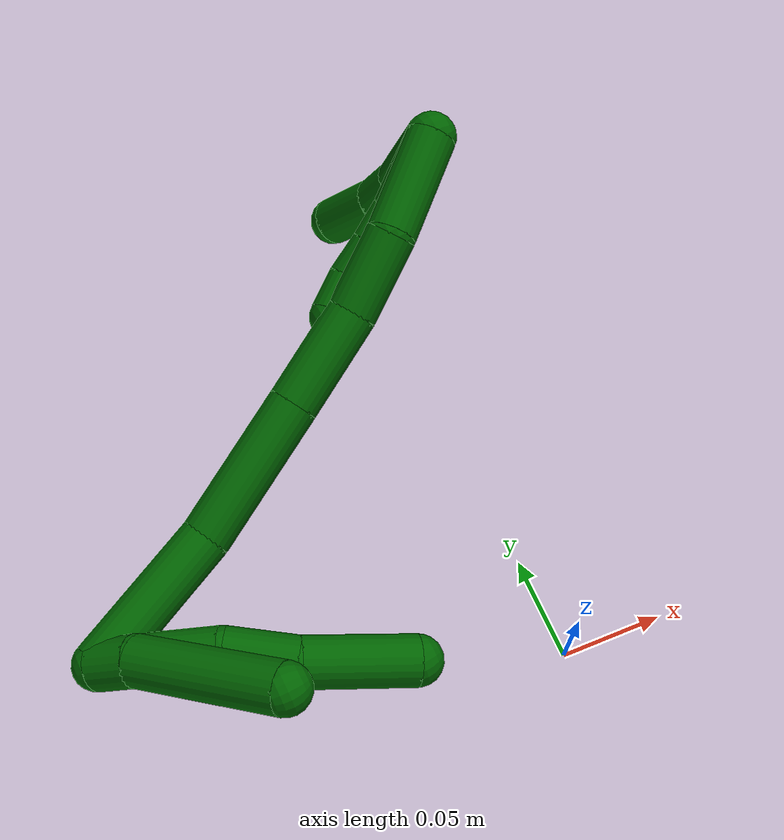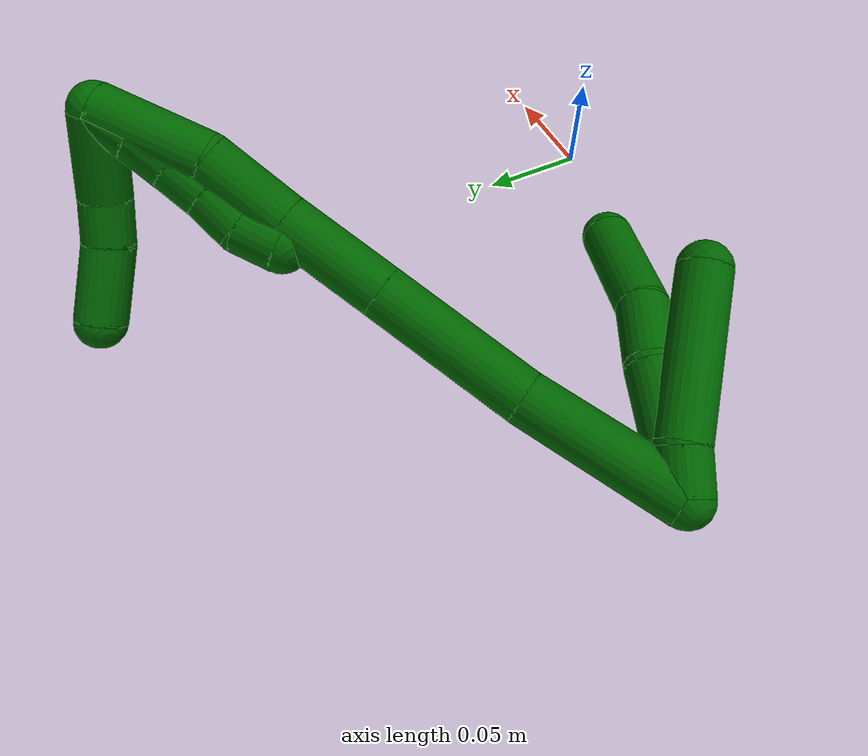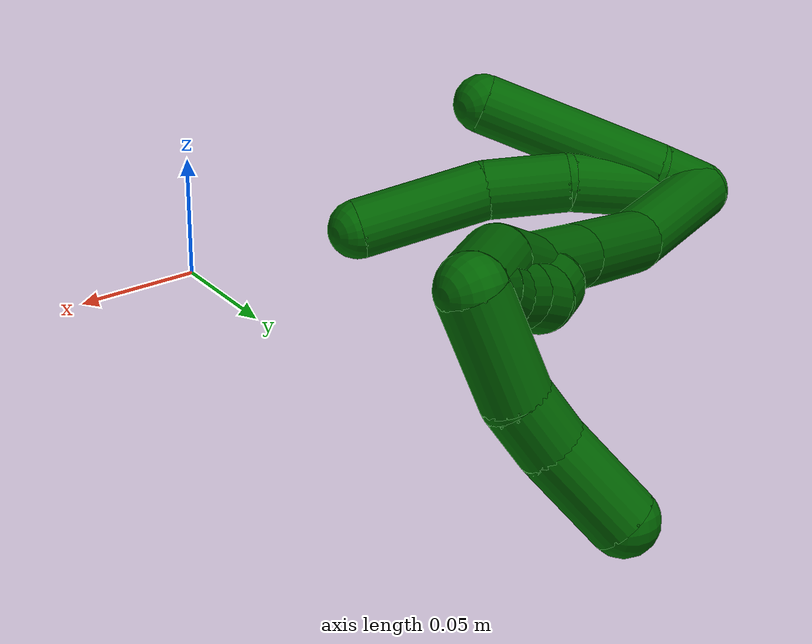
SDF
<sdf version="1.7">
 <world name="default">
  <model name="6">
   <static>0</static>
   <link name="6">
    <collision name="collision-cylinder-e_1_2_8">
     <pose>-0.011887 -0.005236 0.026683 0.193768 -0.41211 -0.040623</pose>
     <geometry><cylinder><radius>0.0125</radius><length>0.059353</length></cylinder></geometry>
     <surface>
      <friction><ode><mu>1.16</mu><mu2>1.16</mu2><slip1>0</slip1><slip2>0</slip2></ode></friction>
      <contact><ode><kp>1e+06</kp><kd>1</kd><max_vel>0</max_vel><min_depth>0.001</min_depth></ode></contact>
     </surface>
    </collision>
    <visual name="visual-cylinder-e_1_2_8">
     <pose>-0.011887 -0.005236 0.026683 0.193768 -0.41211 -0.040623</pose>
     <geometry><cylinder><radius>0.0125</radius><length>0.059353</length></cylinder></geometry>
     <material><ambient>0 0.392157 0.003922 1</ambient></material>
    </visual>
    <collision name="collision-cylinder-e_2_8_9">
     <pose>-0.029392 -0.018268 0.068027 0.488724 -0.326263 -0.082035</pose>
     <geometry><cylinder><radius>0.0125</radius><length>0.035058</length></cylinder></geometry>
     <surface>
      <friction><ode><mu>1.16</mu><mu2>1.16</mu2><slip1>0</slip1><slip2>0</slip2></ode></friction>
      <contact><ode><kp>1e+06</kp><kd>1</kd><max_vel>0</max_vel><min_depth>0.001</min_depth></ode></contact>
     </surface>
    </collision>
    <visual name="visual-cylinder-e_2_8_9">
     <pose>-0.029392 -0.018268 0.068027 0.488724 -0.326263 -0.082035</pose>
     <geometry><cylinder><radius>0.0125</radius><length>0.035058</length></cylinder></geometry>
     <material><ambient>0 0.392157 0.003922 1</ambient></material>
    </visual>
    <collision name="collision-cylinder-e_3_9_6">
     <pose>-0.038044 -0.037349 0.107906 0.420772 -0.109391 -0.023382</pose>
     <geometry><cylinder><radius>0.0125</radius><length>0.055588</length></cylinder></geometry>
     <surface>
      <friction><ode><mu>1.16</mu><mu2>1.16</mu2><slip1>0</slip1><slip2>0</slip2></ode></friction>
      <contact><ode><kp>1e+06</kp><kd>1</kd><max_vel>0</max_vel><min_depth>0.001</min_depth></ode></contact>
     </surface>
    </collision>
    <visual name="visual-cylinder-e_3_9_6">
     <pose>-0.038044 -0.037349 0.107906 0.420772 -0.109391 -0.023382</pose>
     <geometry><cylinder><radius>0.0125</radius><length>0.055588</length></cylinder></geometry>
     <material><ambient>0 0.392157 0.003922 1</ambient></material>
    </visual>
    <collision name="collision-cylinder-e_1_2_10">
     <pose>-0.006791 -0.00016 0.008265 0.019326 -0.687745 -0.006921</pose>
     <geometry><cylinder><radius>0.0125</radius><length>0.021396</length></cylinder></geometry>
     <surface>
      <friction><ode><mu>1.16</mu><mu2>1.16</mu2><slip1>0</slip1><slip2>0</slip2></ode></friction>
      <contact><ode><kp>1e+06</kp><kd>1</kd><max_vel>0</max_vel><min_depth>0.001</min_depth></ode></contact>
     </surface>
    </collision>
    <visual name="visual-cylinder-e_1_2_10">
     <pose>-0.006791 -0.00016 0.008265 0.019326 -0.687745 -0.006921</pose>
     <geometry><cylinder><radius>0.0125</radius><length>0.021396</length></cylinder></geometry>
     <material><ambient>0 0.392157 0.003922 1</ambient></material>
    </visual>
    <collision name="collision-cylinder-e_2_10_5">
     <pose>-0.041045 -0.008995 0.043272 0.313694 -0.773683 -0.128669</pose>
     <geometry><cylinder><radius>0.0125</radius><length>0.078604</length></cylinder></geometry>
     <surface>
      <friction><ode><mu>1.16</mu><mu2>1.16</mu2><slip1>0</slip1><slip2>0</slip2></ode></friction>
      <contact><ode><kp>1e+06</kp><kd>1</kd><max_vel>0</max_vel><min_depth>0.001</min_depth></ode></contact>
     </surface>
    </collision>
    <visual name="visual-cylinder-e_2_10_5">
     <pose>-0.041045 -0.008995 0.043272 0.313694 -0.773683 -0.128669</pose>
     <geometry><cylinder><radius>0.0125</radius><length>0.078604</length></cylinder></geometry>
     <material><ambient>0 0.392157 0.003922 1</ambient></material>
    </visual>
    <collision name="collision-cylinder-e_1_2_11">
     <pose>0.008098 0.014545 0.03451 -0.398892 0.212944 -0.0432</pose>
     <geometry><cylinder><radius>0.0125</radius><length>0.076631</length></cylinder></geometry>
     <surface>
      <friction><ode><mu>1.16</mu><mu2>1.16</mu2><slip1>0</slip1><slip2>0</slip2></ode></friction>
      <contact><ode><kp>1e+06</kp><kd>1</kd><max_vel>0</max_vel><min_depth>0.001</min_depth></ode></contact>
     </surface>
    </collision>
    <visual name="visual-cylinder-e_1_2_11">
     <pose>0.008098 0.014545 0.03451 -0.398892 0.212944 -0.0432</pose>
     <geometry><cylinder><radius>0.0125</radius><length>0.076631</length></cylinder></geometry>
     <material><ambient>0 0.392157 0.003922 1</ambient></material>
    </visual>
    <collision name="collision-cylinder-e_2_11_12">
     <pose>0.018677 0.049844 0.100735 -0.579439 0.065382 -0.019497</pose>
     <geometry><cylinder><radius>0.0125</radius><length>0.075966</length></cylinder></geometry>
     <surface>
      <friction><ode><mu>1.16</mu><mu2>1.16</mu2><slip1>0</slip1><slip2>0</slip2></ode></friction>
      <contact><ode><kp>1e+06</kp><kd>1</kd><max_vel>0</max_vel><min_depth>0.001</min_depth></ode></contact>
     </surface>
    </collision>
    <visual name="visual-cylinder-e_2_11_12">
     <pose>0.018677 0.049844 0.100735 -0.579439 0.065382 -0.019497</pose>
     <geometry><cylinder><radius>0.0125</radius><length>0.075966</length></cylinder></geometry>
     <material><ambient>0 0.392157 0.003922 1</ambient></material>
    </visual>
    <collision name="collision-cylinder-e_3_12_13">
     <pose>0.022808 0.085062 0.154024 -0.590626 0.063434 -0.019303</pose>
     <geometry><cylinder><radius>0.0125</radius><length>0.052054</length></cylinder></geometry>
     <surface>
      <friction><ode><mu>1.16</mu><mu2>1.16</mu2><slip1>0</slip1><slip2>0</slip2></ode></friction>
      <contact><ode><kp>1e+06</kp><kd>1</kd><max_vel>0</max_vel><min_depth>0.001</min_depth></ode></contact>
     </surface>
    </collision>
    <visual name="visual-cylinder-e_3_12_13">
     <pose>0.022808 0.085062 0.154024 -0.590626 0.063434 -0.019303</pose>
     <geometry><cylinder><radius>0.0125</radius><length>0.052054</length></cylinder></geometry>
     <material><ambient>0 0.392157 0.003922 1</ambient></material>
    </visual>
    <collision name="collision-cylinder-e_4_13_14">
     <pose>0.023913 0.113693 0.191245 -0.735755 -0.025825 0.009954</pose>
     <geometry><cylinder><radius>0.0125</radius><length>0.042228</length></cylinder></geometry>
     <surface>
      <friction><ode><mu>1.16</mu><mu2>1.16</mu2><slip1>0</slip1><slip2>0</slip2></ode></friction>
      <contact><ode><kp>1e+06</kp><kd>1</kd><max_vel>0</max_vel><min_depth>0.001</min_depth></ode></contact>
     </surface>
    </collision>
    <visual name="visual-cylinder-e_4_13_14">
     <pose>0.023913 0.113693 0.191245 -0.735755 -0.025825 0.009954</pose>
     <geometry><cylinder><radius>0.0125</radius><length>0.042228</length></cylinder></geometry>
     <material><ambient>0 0.392157 0.003922 1</ambient></material>
    </visual>
    <collision name="collision-cylinder-e_5_14_1">
     <pose>0.029731 0.144838 0.226301 -0.718751 0.241938 -0.091276</pose>
     <geometry><cylinder><radius>0.0125</radius><length>0.053122</length></cylinder></geometry>
     <surface>
      <friction><ode><mu>1.16</mu><mu2>1.16</mu2><slip1>0</slip1><slip2>0</slip2></ode></friction>
      <contact><ode><kp>1e+06</kp><kd>1</kd><max_vel>0</max_vel><min_depth>0.001</min_depth></ode></contact>
     </surface>
    </collision>
    <visual name="visual-cylinder-e_5_14_1">
     <pose>0.029731 0.144838 0.226301 -0.718751 0.241938 -0.091276</pose>
     <geometry><cylinder><radius>0.0125</radius><length>0.053122</length></cylinder></geometry>
     <material><ambient>0 0.392157 0.003922 1</ambient></material>
    </visual>
    <collision name="collision-cylinder-e_1_1_15">
     <pose>0.035418 0.15515 0.238287 2.40966 -0.06776 -0.176421</pose>
     <geometry><cylinder><radius>0.0125</radius><length>0.02</length></cylinder></geometry>
     <surface>
      <friction><ode><mu>1.16</mu><mu2>1.16</mu2><slip1>0</slip1><slip2>0</slip2></ode></friction>
      <contact><ode><kp>1e+06</kp><kd>1</kd><max_vel>0</max_vel><min_depth>0.001</min_depth></ode></contact>
     </surface>
    </collision>
    <visual name="visual-cylinder-e_1_1_15">
     <pose>0.035418 0.15515 0.238287 2.40966 -0.06776 -0.176421</pose>
     <geometry><cylinder><radius>0.0125</radius><length>0.02</length></cylinder></geometry>
     <material><ambient>0 0.392157 0.003922 1</ambient></material>
    </visual>
    <collision name="collision-cylinder-e_2_15_16">
     <pose>0.035301 0.141429 0.223799 2.35709 0.056106 0.135453</pose>
     <geometry><cylinder><radius>0.0125</radius><length>0.02</length></cylinder></geometry>
     <surface>
      <friction><ode><mu>1.16</mu><mu2>1.16</mu2><slip1>0</slip1><slip2>0</slip2></ode></friction>
      <contact><ode><kp>1e+06</kp><kd>1</kd><max_vel>0</max_vel><min_depth>0.001</min_depth></ode></contact>
     </surface>
    </collision>
    <visual name="visual-cylinder-e_2_15_16">
     <pose>0.035301 0.141429 0.223799 2.35709 0.056106 0.135453</pose>
     <geometry><cylinder><radius>0.0125</radius><length>0.02</length></cylinder></geometry>
     <material><ambient>0 0.392157 0.003922 1</ambient></material>
    </visual>
    <collision name="collision-cylinder-e_3_16_17">
     <pose>0.035907 0.128342 0.208757 2.49401 0.00451 0.013439</pose>
     <geometry><cylinder><radius>0.0125</radius><length>0.02</length></cylinder></geometry>
     <surface>
      <friction><ode><mu>1.16</mu><mu2>1.16</mu2><slip1>0</slip1><slip2>0</slip2></ode></friction>
      <contact><ode><kp>1e+06</kp><kd>1</kd><max_vel>0</max_vel><min_depth>0.001</min_depth></ode></contact>
     </surface>
    </collision>
    <visual name="visual-cylinder-e_3_16_17">
     <pose>0.035907 0.128342 0.208757 2.49401 0.00451 0.013439</pose>
     <geometry><cylinder><radius>0.0125</radius><length>0.02</length></cylinder></geometry>
     <material><ambient>0 0.392157 0.003922 1</ambient></material>
    </visual>
    <collision name="collision-cylinder-e_4_17_18">
     <pose>0.036934 0.116569 0.192653 2.52674 0.098327 0.3075</pose>
     <geometry><cylinder><radius>0.0125</radius><length>0.02</length></cylinder></geometry>
     <surface>
      <friction><ode><mu>1.16</mu><mu2>1.16</mu2><slip1>0</slip1><slip2>0</slip2></ode></friction>
      <contact><ode><kp>1e+06</kp><kd>1</kd><max_vel>0</max_vel><min_depth>0.001</min_depth></ode></contact>
     </surface>
    </collision>
    <visual name="visual-cylinder-e_4_17_18">
     <pose>0.036934 0.116569 0.192653 2.52674 0.098327 0.3075</pose>
     <geometry><cylinder><radius>0.0125</radius><length>0.02</length></cylinder></geometry>
     <material><ambient>0 0.392157 0.003922 1</ambient></material>
    </visual>
    <collision name="collision-cylinder-e_5_18_4">
     <pose>0.035495 0.104968 0.176791 2.49301 -0.244471 -0.700741</pose>
     <geometry><cylinder><radius>0.0125</radius><length>0.02</length></cylinder></geometry>
     <surface>
      <friction><ode><mu>1.16</mu><mu2>1.16</mu2><slip1>0</slip1><slip2>0</slip2></ode></friction>
      <contact><ode><kp>1e+06</kp><kd>1</kd><max_vel>0</max_vel><min_depth>0.001</min_depth></ode></contact>
     </surface>
    </collision>
    <visual name="visual-cylinder-e_5_18_4">
     <pose>0.035495 0.104968 0.176791 2.49301 -0.244471 -0.700741</pose>
     <geometry><cylinder><radius>0.0125</radius><length>0.02</length></cylinder></geometry>
     <material><ambient>0 0.392157 0.003922 1</ambient></material>
    </visual>
    <collision name="collision-cylinder-e_1_1_19">
     <pose>0.053499 0.151946 0.239905 2.10224 0.988824 1.5113</pose>
     <geometry><cylinder><radius>0.0125</radius><length>0.041667</length></cylinder></geometry>
     <surface>
      <friction><ode><mu>1.16</mu><mu2>1.16</mu2><slip1>0</slip1><slip2>0</slip2></ode></friction>
      <contact><ode><kp>1e+06</kp><kd>1</kd><max_vel>0</max_vel><min_depth>0.001</min_depth></ode></contact>
     </surface>
    </collision>
    <visual name="visual-cylinder-e_1_1_19">
     <pose>0.053499 0.151946 0.239905 2.10224 0.988824 1.5113</pose>
     <geometry><cylinder><radius>0.0125</radius><length>0.041667</length></cylinder></geometry>
     <material><ambient>0 0.392157 0.003922 1</ambient></material>
    </visual>
    <collision name="collision-cylinder-e_2_19_20">
     <pose>0.079595 0.138251 0.228977 2.50076 0.936578 1.98033</pose>
     <geometry><cylinder><radius>0.0125</radius><length>0.021581</length></cylinder></geometry>
     <surface>
      <friction><ode><mu>1.16</mu><mu2>1.16</mu2><slip1>0</slip1><slip2>0</slip2></ode></friction>
      <contact><ode><kp>1e+06</kp><kd>1</kd><max_vel>0</max_vel><min_depth>0.001</min_depth></ode></contact>
     </surface>
    </collision>
    <visual name="visual-cylinder-e_2_19_20">
     <pose>0.079595 0.138251 0.228977 2.50076 0.936578 1.98033</pose>
     <geometry><cylinder><radius>0.0125</radius><length>0.021581</length></cylinder></geometry>
     <material><ambient>0 0.392157 0.003922 1</ambient></material>
    </visual>
    <collision name="collision-cylinder-e_3_20_3">
     <pose>0.104017 0.131205 0.214916 2.79542 1.02757 2.54074</pose>
     <geometry><cylinder><radius>0.0125</radius><length>0.036752</length></cylinder></geometry>
     <surface>
      <friction><ode><mu>1.16</mu><mu2>1.16</mu2><slip1>0</slip1><slip2>0</slip2></ode></friction>
      <contact><ode><kp>1e+06</kp><kd>1</kd><max_vel>0</max_vel><min_depth>0.001</min_depth></ode></contact>
     </surface>
    </collision>
    <visual name="visual-cylinder-e_3_20_3">
     <pose>0.104017 0.131205 0.214916 2.79542 1.02757 2.54074</pose>
     <geometry><cylinder><radius>0.0125</radius><length>0.036752</length></cylinder></geometry>
     <material><ambient>0 0.392157 0.003922 1</ambient></material>
    </visual>
    <collision name="collision-sphere-3">
     <pose>0.119748 0.127982 0.205981 0 -0 0</pose>
     <geometry><sphere><radius>0.0125</radius></sphere></geometry>
     <surface>
      <friction><ode><mu>1.16</mu><mu2>1.16</mu2><slip1>0</slip1><slip2>0</slip2></ode></friction>
      <contact><ode><kp>1e+06</kp><kd>1</kd><max_vel>0</max_vel><min_depth>0.001</min_depth></ode></contact>
     </surface>
    </collision>
    <visual name="visual-sphere-3">
     <pose>0.119748 0.127982 0.205981 0 -0 0</pose>
     <geometry><sphere><radius>0.0125</radius></sphere></geometry>
     <material><ambient>0 0.392157 0.003922 1</ambient></material>
    </visual>
    <collision name="collision-sphere-20">
     <pose>0.088287 0.134428 0.223851 0 -0 0</pose>
     <geometry><sphere><radius>0.0125</radius></sphere></geometry>
     <surface>
      <friction><ode><mu>1.16</mu><mu2>1.16</mu2><slip1>0</slip1><slip2>0</slip2></ode></friction>
      <contact><ode><kp>1e+06</kp><kd>1</kd><max_vel>0</max_vel><min_depth>0.001</min_depth></ode></contact>
     </surface>
    </collision>
    <visual name="visual-sphere-20">
     <pose>0.088287 0.134428 0.223851 0 -0 0</pose>
     <geometry><sphere><radius>0.0125</radius></sphere></geometry>
     <material><ambient>0 0.392157 0.003922 1</ambient></material>
    </visual>
    <collision name="collision-sphere-19">
     <pose>0.070903 0.142073 0.234102 0 -0 0</pose>
     <geometry><sphere><radius>0.0125</radius></sphere></geometry>
     <surface>
      <friction><ode><mu>1.16</mu><mu2>1.16</mu2><slip1>0</slip1><slip2>0</slip2></ode></friction>
      <contact><ode><kp>1e+06</kp><kd>1</kd><max_vel>0</max_vel><min_depth>0.001</min_depth></ode></contact>
     </surface>
    </collision>
    <visual name="visual-sphere-19">
     <pose>0.070903 0.142073 0.234102 0 -0 0</pose>
     <geometry><sphere><radius>0.0125</radius></sphere></geometry>
     <material><ambient>0 0.392157 0.003922 1</ambient></material>
    </visual>
    <collision name="collision-sphere-5">
     <pose>-0.068509 -0.01767 0.070014 0 -0 0</pose>
     <geometry><sphere><radius>0.0125</radius></sphere></geometry>
     <surface>
      <friction><ode><mu>1.16</mu><mu2>1.16</mu2><slip1>0</slip1><slip2>0</slip2></ode></friction>
      <contact><ode><kp>1e+06</kp><kd>1</kd><max_vel>0</max_vel><min_depth>0.001</min_depth></ode></contact>
     </surface>
    </collision>
    <visual name="visual-sphere-5">
     <pose>-0.068509 -0.01767 0.070014 0 -0 0</pose>
     <geometry><sphere><radius>0.0125</radius></sphere></geometry>
     <material><ambient>0 0.392157 0.003922 1</ambient></material>
    </visual>
    <collision name="collision-sphere-10">
     <pose>-0.013582 -0.000319 0.016529 0 -0 0</pose>
     <geometry><sphere><radius>0.0125</radius></sphere></geometry>
     <surface>
      <friction><ode><mu>1.16</mu><mu2>1.16</mu2><slip1>0</slip1><slip2>0</slip2></ode></friction>
      <contact><ode><kp>1e+06</kp><kd>1</kd><max_vel>0</max_vel><min_depth>0.001</min_depth></ode></contact>
     </surface>
    </collision>
    <visual name="visual-sphere-10">
     <pose>-0.013582 -0.000319 0.016529 0 -0 0</pose>
     <geometry><sphere><radius>0.0125</radius></sphere></geometry>
     <material><ambient>0 0.392157 0.003922 1</ambient></material>
    </visual>
    <collision name="collision-sphere-6">
     <pose>-0.041079 -0.048634 0.133124 0 -0 0</pose>
     <geometry><sphere><radius>0.0125</radius></sphere></geometry>
     <surface>
      <friction><ode><mu>1.16</mu><mu2>1.16</mu2><slip1>0</slip1><slip2>0</slip2></ode></friction>
      <contact><ode><kp>1e+06</kp><kd>1</kd><max_vel>0</max_vel><min_depth>0.001</min_depth></ode></contact>
     </surface>
    </collision>
    <visual name="visual-sphere-6">
     <pose>-0.041079 -0.048634 0.133124 0 -0 0</pose>
     <geometry><sphere><radius>0.0125</radius></sphere></geometry>
     <material><ambient>0 0.392157 0.003922 1</ambient></material>
    </visual>
    <collision name="collision-sphere-9">
     <pose>-0.03501 -0.026064 0.082688 0 -0 0</pose>
     <geometry><sphere><radius>0.0125</radius></sphere></geometry>
     <surface>
      <friction><ode><mu>1.16</mu><mu2>1.16</mu2><slip1>0</slip1><slip2>0</slip2></ode></friction>
      <contact><ode><kp>1e+06</kp><kd>1</kd><max_vel>0</max_vel><min_depth>0.001</min_depth></ode></contact>
     </surface>
    </collision>
    <visual name="visual-sphere-9">
     <pose>-0.03501 -0.026064 0.082688 0 -0 0</pose>
     <geometry><sphere><radius>0.0125</radius></sphere></geometry>
     <material><ambient>0 0.392157 0.003922 1</ambient></material>
    </visual>
    <collision name="collision-sphere-2">
     <geometry><sphere><radius>0.0125</radius></sphere></geometry>
     <surface>
      <friction><ode><mu>1.16</mu><mu2>1.16</mu2><slip1>0</slip1><slip2>0</slip2></ode></friction>
      <contact><ode><kp>1e+06</kp><kd>1</kd><max_vel>0</max_vel><min_depth>0.001</min_depth></ode></contact>
     </surface>
    </collision>
    <visual name="visual-sphere-2">
     <geometry><sphere><radius>0.0125</radius></sphere></geometry>
     <material><ambient>0 0.392157 0.003922 1</ambient></material>
    </visual>
    <collision name="collision-sphere-8">
     <pose>-0.023774 -0.010472 0.053366 0 -0 0</pose>
     <geometry><sphere><radius>0.0125</radius></sphere></geometry>
     <surface>
      <friction><ode><mu>1.16</mu><mu2>1.16</mu2><slip1>0</slip1><slip2>0</slip2></ode></friction>
      <contact><ode><kp>1e+06</kp><kd>1</kd><max_vel>0</max_vel><min_depth>0.001</min_depth></ode></contact>
     </surface>
    </collision>
    <visual name="visual-sphere-8">
     <pose>-0.023774 -0.010472 0.053366 0 -0 0</pose>
     <geometry><sphere><radius>0.0125</radius></sphere></geometry>
     <material><ambient>0 0.392157 0.003922 1</ambient></material>
    </visual>
    <collision name="collision-sphere-11">
     <pose>0.016195 0.029091 0.069019 0 -0 0</pose>
     <geometry><sphere><radius>0.0125</radius></sphere></geometry>
     <surface>
      <friction><ode><mu>1.16</mu><mu2>1.16</mu2><slip1>0</slip1><slip2>0</slip2></ode></friction>
      <contact><ode><kp>1e+06</kp><kd>1</kd><max_vel>0</max_vel><min_depth>0.001</min_depth></ode></contact>
     </surface>
    </collision>
    <visual name="visual-sphere-11">
     <pose>0.016195 0.029091 0.069019 0 -0 0</pose>
     <geometry><sphere><radius>0.0125</radius></sphere></geometry>
     <material><ambient>0 0.392157 0.003922 1</ambient></material>
    </visual>
    <collision name="collision-sphere-12">
     <pose>0.021158 0.070597 0.13245 0 -0 0</pose>
     <geometry><sphere><radius>0.0125</radius></sphere></geometry>
     <surface>
      <friction><ode><mu>1.16</mu><mu2>1.16</mu2><slip1>0</slip1><slip2>0</slip2></ode></friction>
      <contact><ode><kp>1e+06</kp><kd>1</kd><max_vel>0</max_vel><min_depth>0.001</min_depth></ode></contact>
     </surface>
    </collision>
    <visual name="visual-sphere-12">
     <pose>0.021158 0.070597 0.13245 0 -0 0</pose>
     <geometry><sphere><radius>0.0125</radius></sphere></geometry>
     <material><ambient>0 0.392157 0.003922 1</ambient></material>
    </visual>
    <collision name="collision-sphere-13">
     <pose>0.024458 0.099527 0.175598 0 -0 0</pose>
     <geometry><sphere><radius>0.0125</radius></sphere></geometry>
     <surface>
      <friction><ode><mu>1.16</mu><mu2>1.16</mu2><slip1>0</slip1><slip2>0</slip2></ode></friction>
      <contact><ode><kp>1e+06</kp><kd>1</kd><max_vel>0</max_vel><min_depth>0.001</min_depth></ode></contact>
     </surface>
    </collision>
    <visual name="visual-sphere-13">
     <pose>0.024458 0.099527 0.175598 0 -0 0</pose>
     <geometry><sphere><radius>0.0125</radius></sphere></geometry>
     <material><ambient>0 0.392157 0.003922 1</ambient></material>
    </visual>
    <collision name="collision-sphere-14">
     <pose>0.023368 0.127859 0.206892 0 -0 0</pose>
     <geometry><sphere><radius>0.0125</radius></sphere></geometry>
     <surface>
      <friction><ode><mu>1.16</mu><mu2>1.16</mu2><slip1>0</slip1><slip2>0</slip2></ode></friction>
      <contact><ode><kp>1e+06</kp><kd>1</kd><max_vel>0</max_vel><min_depth>0.001</min_depth></ode></contact>
     </surface>
    </collision>
    <visual name="visual-sphere-14">
     <pose>0.023368 0.127859 0.206892 0 -0 0</pose>
     <geometry><sphere><radius>0.0125</radius></sphere></geometry>
     <material><ambient>0 0.392157 0.003922 1</ambient></material>
    </visual>
    <collision name="collision-sphere-1">
     <pose>0.036095 0.161818 0.245709 0 -0 0</pose>
     <geometry><sphere><radius>0.0125</radius></sphere></geometry>
     <surface>
      <friction><ode><mu>1.16</mu><mu2>1.16</mu2><slip1>0</slip1><slip2>0</slip2></ode></friction>
      <contact><ode><kp>1e+06</kp><kd>1</kd><max_vel>0</max_vel><min_depth>0.001</min_depth></ode></contact>
     </surface>
    </collision>
    <visual name="visual-sphere-1">
     <pose>0.036095 0.161818 0.245709 0 -0 0</pose>
     <geometry><sphere><radius>0.0125</radius></sphere></geometry>
     <material><ambient>0 0.392157 0.003922 1</ambient></material>
    </visual>
    <collision name="collision-sphere-18">
     <pose>0.037916 0.110829 0.184524 0 -0 0</pose>
     <geometry><sphere><radius>0.0125</radius></sphere></geometry>
     <surface>
      <friction><ode><mu>1.16</mu><mu2>1.16</mu2><slip1>0</slip1><slip2>0</slip2></ode></friction>
      <contact><ode><kp>1e+06</kp><kd>1</kd><max_vel>0</max_vel><min_depth>0.001</min_depth></ode></contact>
     </surface>
    </collision>
    <visual name="visual-sphere-18">
     <pose>0.037916 0.110829 0.184524 0 -0 0</pose>
     <geometry><sphere><radius>0.0125</radius></sphere></geometry>
     <material><ambient>0 0.392157 0.003922 1</ambient></material>
    </visual>
    <collision name="collision-sphere-15">
     <pose>0.034741 0.148482 0.230865 0 -0 0</pose>
     <geometry><sphere><radius>0.0125</radius></sphere></geometry>
     <surface>
      <friction><ode><mu>1.16</mu><mu2>1.16</mu2><slip1>0</slip1><slip2>0</slip2></ode></friction>
      <contact><ode><kp>1e+06</kp><kd>1</kd><max_vel>0</max_vel><min_depth>0.001</min_depth></ode></contact>
     </surface>
    </collision>
    <visual name="visual-sphere-15">
     <pose>0.034741 0.148482 0.230865 0 -0 0</pose>
     <geometry><sphere><radius>0.0125</radius></sphere></geometry>
     <material><ambient>0 0.392157 0.003922 1</ambient></material>
    </visual>
    <collision name="collision-sphere-16">
     <pose>0.035862 0.134375 0.216733 0 -0 0</pose>
     <geometry><sphere><radius>0.0125</radius></sphere></geometry>
     <surface>
      <friction><ode><mu>1.16</mu><mu2>1.16</mu2><slip1>0</slip1><slip2>0</slip2></ode></friction>
      <contact><ode><kp>1e+06</kp><kd>1</kd><max_vel>0</max_vel><min_depth>0.001</min_depth></ode></contact>
     </surface>
    </collision>
    <visual name="visual-sphere-16">
     <pose>0.035862 0.134375 0.216733 0 -0 0</pose>
     <geometry><sphere><radius>0.0125</radius></sphere></geometry>
     <material><ambient>0 0.392157 0.003922 1</ambient></material>
    </visual>
    <collision name="collision-sphere-17">
     <pose>0.035952 0.12231 0.200782 0 -0 0</pose>
     <geometry><sphere><radius>0.0125</radius></sphere></geometry>
     <surface>
      <friction><ode><mu>1.16</mu><mu2>1.16</mu2><slip1>0</slip1><slip2>0</slip2></ode></friction>
      <contact><ode><kp>1e+06</kp><kd>1</kd><max_vel>0</max_vel><min_depth>0.001</min_depth></ode></contact>
     </surface>
    </collision>
    <visual name="visual-sphere-17">
     <pose>0.035952 0.12231 0.200782 0 -0 0</pose>
     <geometry><sphere><radius>0.0125</radius></sphere></geometry>
     <material><ambient>0 0.392157 0.003922 1</ambient></material>
    </visual>
    <collision name="collision-sphere-4">
     <pose>0.033075 0.099107 0.169059 0 -0 0</pose>
     <geometry><sphere><radius>0.0125</radius></sphere></geometry>
     <surface>
      <friction><ode><mu>1.16</mu><mu2>1.16</mu2><slip1>0</slip1><slip2>0</slip2></ode></friction>
      <contact><ode><kp>1e+06</kp><kd>1</kd><max_vel>0</max_vel><min_depth>0.001</min_depth></ode></contact>
     </surface>
    </collision>
    <visual name="visual-sphere-4">
     <pose>0.033075 0.099107 0.169059 0 -0 0</pose>
     <geometry><sphere><radius>0.0125</radius></sphere></geometry>
     <material><ambient>0 0.392157 0.003922 1</ambient></material>
    </visual>
    <inertial>
     <pose>0.013259 0.060203 0.127465 0 -0 0</pose>
     <mass>0.75</mass>
     <inertia>
      <ixx>0.000188</ixx>
      <ixy>0</ixy>
      <ixz>0</ixz>
      <iyy>0.000185</iyy>
      <iyz>0</iyz>
      <izz>1.4e-05</izz>
     </inertia>
    </inertial>
   </link>
   <pose>-0.204005 0.074519 0.012215 1.56136 0.825256 1.64002</pose>
  </model>
 </world>
</sdf>
